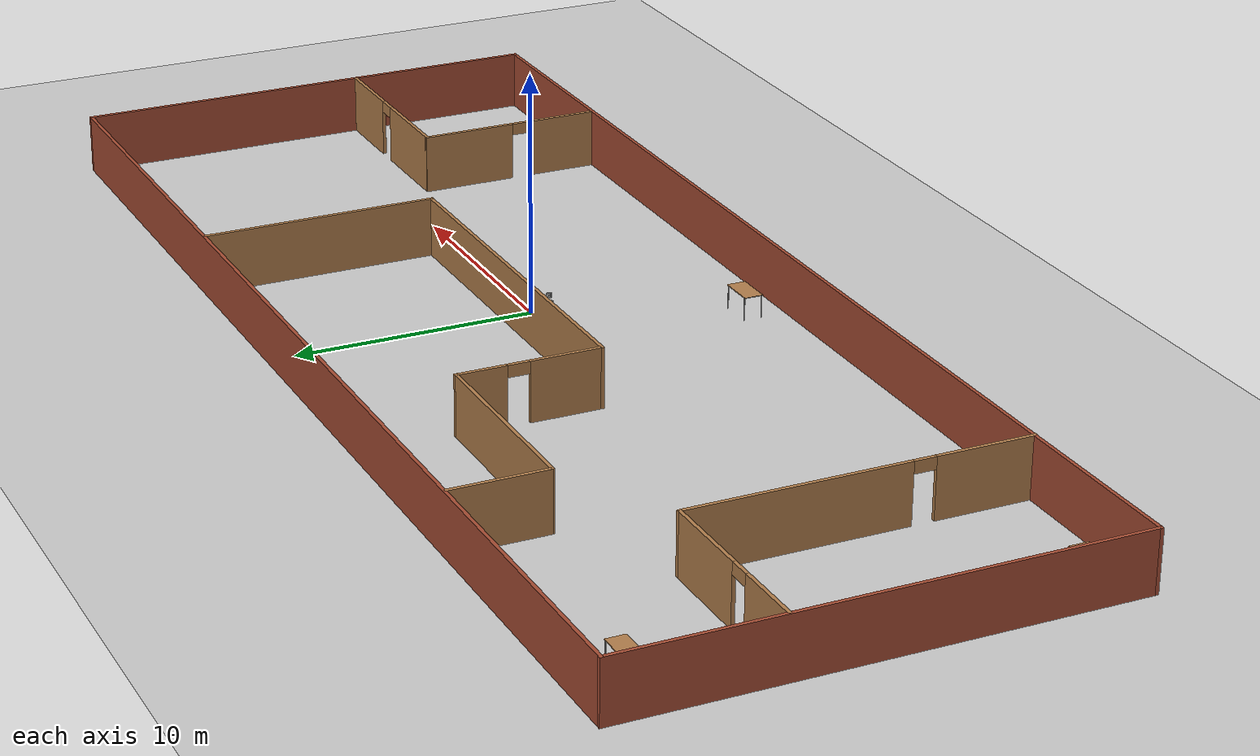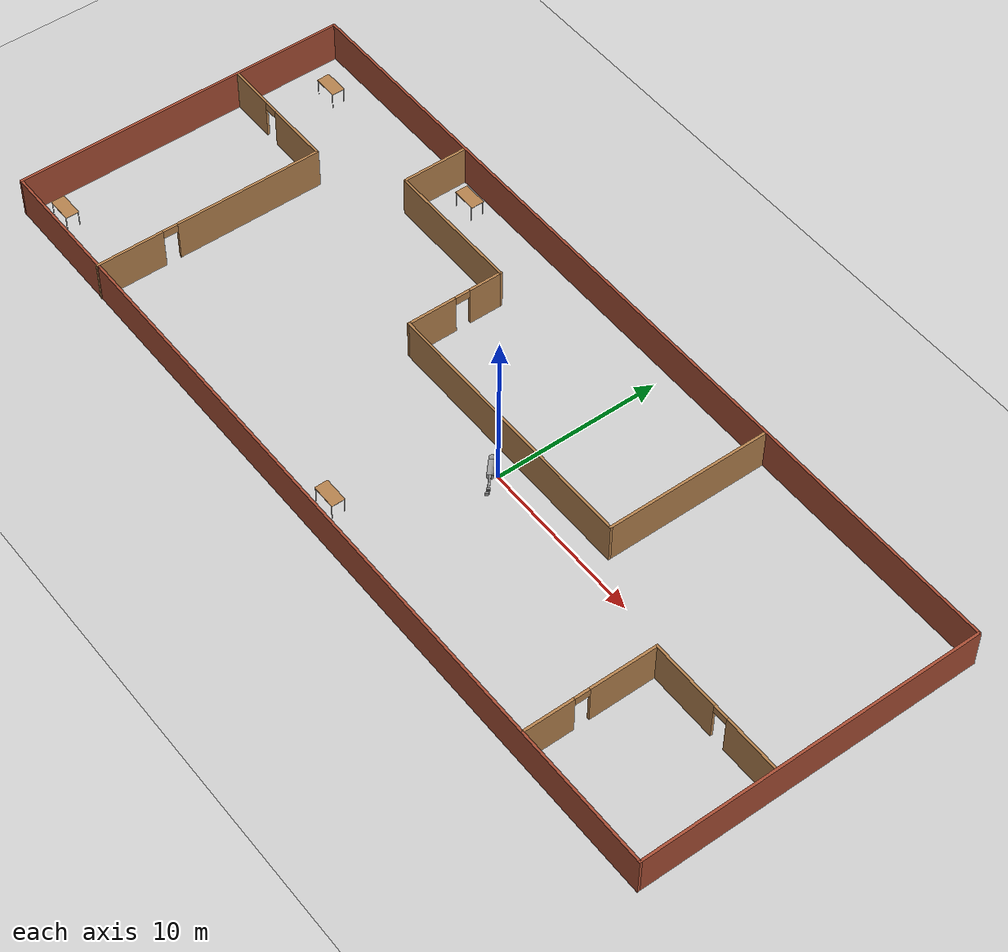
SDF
<sdf version="1.6">
 <world name="default">
  <model name="ground_plane">
   <static>1</static>
   <link name="link">
    <collision name="collision">
     <geometry><plane><normal>0 0 1</normal><size>100 100</size></plane></geometry>
     <surface><friction><ode><mu>100</mu><mu2>50</mu2></ode></friction></surface>
    </collision>
    <visual name="visual">
     <cast_shadows>0</cast_shadows>
     <geometry><plane><normal>0 0 1</normal><size>100 100</size></plane></geometry>
     <material>
      <script><uri>file://media/materials/scripts/gazebo.material</uri><name>Gazebo/Grey</name></script>
     </material>
    </visual>
   </link>
  </model>
  <model name="My_building">
   <pose>-3.695 0.89314 0 0 -0 0</pose>
   <link name="Wall_10">
    <collision name="Wall_10_Collision">
     <geometry><box><size>4 0.15 2.5</size></box></geometry>
     <pose>0 0 1.25 0 -0 0</pose>
    </collision>
    <visual name="Wall_10_Visual">
     <pose>0 0 1.25 0 -0 0</pose>
     <geometry><box><size>4 0.15 2.5</size></box></geometry>
     <material>
      <script><uri>file://media/materials/scripts/gazebo.material</uri><name>Gazebo/Wood</name></script>
      <ambient>1 1 1 1</ambient>
     </material>
     <meta><layer>0</layer></meta>
    </visual>
    <pose>-13.7983 8.19008 0 0 -0 1.5708</pose>
   </link>
   <link name="Wall_13">
    <collision name="Wall_13_Collision">
     <geometry><box><size>10 0.15 2.5</size></box></geometry>
     <pose>0 0 1.25 0 -0 0</pose>
    </collision>
    <visual name="Wall_13_Visual">
     <pose>0 0 1.25 0 -0 0</pose>
     <geometry><box><size>10 0.15 2.5</size></box></geometry>
     <material>
      <script><uri>file://media/materials/scripts/gazebo.material</uri><name>Gazebo/Wood</name></script>
      <ambient>1 1 1 1</ambient>
     </material>
     <meta><layer>0</layer></meta>
    </visual>
    <pose>10.9198 5.26327 0 0 0 -1.5708</pose>
   </link>
   <link name="Wall_14">
    <collision name="Wall_14_Collision">
     <geometry><box><size>16.5 0.15 2.5</size></box></geometry>
     <pose>0 0 1.25 0 -0 0</pose>
    </collision>
    <visual name="Wall_14_Visual">
     <pose>0 0 1.25 0 -0 0</pose>
     <geometry><box><size>16.5 0.15 2.5</size></box></geometry>
     <material>
      <script><uri>file://media/materials/scripts/gazebo.material</uri><name>Gazebo/Wood</name></script>
      <ambient>0.996078 0.47451 0.0196078 1</ambient>
     </material>
     <meta><layer>0</layer></meta>
    </visual>
    <pose>2.74482 0.338271 0 0 -0 3.14159</pose>
   </link>
   <link name="Wall_15">
    <pose>-5.43018 3.26327 0 0 -0 1.5708</pose>
    <visual name="Wall_15_Visual_0">
     <pose>-1.49276 0 1.25 0 -0 0</pose>
     <geometry><box><size>3.01449 0.15 2.5</size></box></geometry>
     <material>
      <script><uri>file://media/materials/scripts/gazebo.material</uri><name>Gazebo/Wood</name></script>
      <ambient>1 1 1 1</ambient>
     </material>
     <meta><layer>0</layer></meta>
    </visual>
    <collision name="Wall_15_Collision_0">
     <geometry><box><size>3.01449 0.15 2.5</size></box></geometry>
     <pose>-1.49276 0 1.25 0 -0 0</pose>
    </collision>
    <visual name="Wall_15_Visual_1">
     <pose>1.95724 0 1.25 0 -0 0</pose>
     <geometry><box><size>2.08551 0.15 2.5</size></box></geometry>
     <material>
      <script><uri>file://media/materials/scripts/gazebo.material</uri><name>Gazebo/Wood</name></script>
      <ambient>1 1 1 1</ambient>
     </material>
     <meta><layer>0</layer></meta>
    </visual>
    <collision name="Wall_15_Collision_1">
     <geometry><box><size>2.08551 0.15 2.5</size></box></geometry>
     <pose>1.95724 0 1.25 0 -0 0</pose>
    </collision>
    <visual name="Wall_15_Visual_2">
     <pose>0.464491 0 2.25 0 -0 0</pose>
     <geometry><box><size>0.9 0.15 0.5</size></box></geometry>
     <material>
      <script><uri>file://media/materials/scripts/gazebo.material</uri><name>Gazebo/Wood</name></script>
      <ambient>1 1 1 1</ambient>
     </material>
     <meta><layer>0</layer></meta>
    </visual>
    <collision name="Wall_15_Collision_2">
     <geometry><box><size>0.9 0.15 0.5</size></box></geometry>
     <pose>0.464491 0 2.25 0 -0 0</pose>
    </collision>
   </link>
   <link name="Wall_16">
    <collision name="Wall_16_Collision">
     <geometry><box><size>8.5 0.15 2.5</size></box></geometry>
     <pose>0 0 1.25 0 -0 0</pose>
    </collision>
    <visual name="Wall_16_Visual">
     <pose>0 0 1.25 0 -0 0</pose>
     <geometry><box><size>8.5 0.15 2.5</size></box></geometry>
     <material>
      <script><uri>file://media/materials/scripts/gazebo.material</uri><name>Gazebo/Wood</name></script>
      <ambient>1 1 1 1</ambient>
     </material>
     <meta><layer>0</layer></meta>
    </visual>
    <pose>-9.60518 6.18827 0 0 -0 3.14159</pose>
   </link>
   <link name="Wall_23">
    <pose>17.6076 -6.18169 0 0 -0 1.5708</pose>
    <visual name="Wall_23_Visual_0">
     <pose>-2.48677 0 1.25 0 -0 0</pose>
     <geometry><box><size>3.02646 0.15 2.5</size></box></geometry>
     <material>
      <script><uri>file://media/materials/scripts/gazebo.material</uri><name>Gazebo/Wood</name></script>
      <ambient>1 1 1 1</ambient>
     </material>
     <meta><layer>0</layer></meta>
    </visual>
    <collision name="Wall_23_Collision_0">
     <geometry><box><size>3.02646 0.15 2.5</size></box></geometry>
     <pose>-2.48677 0 1.25 0 -0 0</pose>
    </collision>
    <visual name="Wall_23_Visual_1">
     <pose>1.96323 0 1.25 0 -0 0</pose>
     <geometry><box><size>4.07354 0.15 2.5</size></box></geometry>
     <material>
      <script><uri>file://media/materials/scripts/gazebo.material</uri><name>Gazebo/Wood</name></script>
      <ambient>1 1 1 1</ambient>
     </material>
     <meta><layer>0</layer></meta>
    </visual>
    <collision name="Wall_23_Collision_1">
     <geometry><box><size>4.07354 0.15 2.5</size></box></geometry>
     <pose>1.96323 0 1.25 0 -0 0</pose>
    </collision>
    <visual name="Wall_23_Visual_2">
     <pose>-0.523537 0 2.25 0 -0 0</pose>
     <geometry><box><size>0.9 0.15 0.5</size></box></geometry>
     <material>
      <script><uri>file://media/materials/scripts/gazebo.material</uri><name>Gazebo/Wood</name></script>
      <ambient>1 1 1 1</ambient>
     </material>
     <meta><layer>0</layer></meta>
    </visual>
    <collision name="Wall_23_Collision_2">
     <geometry><box><size>0.9 0.15 0.5</size></box></geometry>
     <pose>-0.523537 0 2.25 0 -0 0</pose>
    </collision>
   </link>
   <link name="Wall_24">
    <pose>21.7826 -2.25669 0 0 -0 0</pose>
    <visual name="Wall_24_Visual_0">
     <pose>-2.14293 0 1.25 0 -0 0</pose>
     <geometry><box><size>4.21413 0.15 2.5</size></box></geometry>
     <material>
      <script><uri>file://media/materials/scripts/gazebo.material</uri><name>Gazebo/Wood</name></script>
      <ambient>1 1 1 1</ambient>
     </material>
     <meta><layer>0</layer></meta>
    </visual>
    <collision name="Wall_24_Collision_0">
     <geometry><box><size>4.21413 0.15 2.5</size></box></geometry>
     <pose>-2.14293 0 1.25 0 -0 0</pose>
    </collision>
    <visual name="Wall_24_Visual_1">
     <pose>2.55707 0 1.25 0 -0 0</pose>
     <geometry><box><size>3.38587 0.15 2.5</size></box></geometry>
     <material>
      <script><uri>file://media/materials/scripts/gazebo.material</uri><name>Gazebo/Wood</name></script>
      <ambient>1 1 1 1</ambient>
     </material>
     <meta><layer>0</layer></meta>
    </visual>
    <collision name="Wall_24_Collision_1">
     <geometry><box><size>3.38587 0.15 2.5</size></box></geometry>
     <pose>2.55707 0 1.25 0 -0 0</pose>
    </collision>
    <visual name="Wall_24_Visual_2">
     <pose>0.414131 0 2.25 0 -0 0</pose>
     <geometry><box><size>0.9 0.15 0.5</size></box></geometry>
     <material>
      <script><uri>file://media/materials/scripts/gazebo.material</uri><name>Gazebo/Wood</name></script>
      <ambient>1 1 1 1</ambient>
     </material>
     <meta><layer>0</layer></meta>
    </visual>
    <collision name="Wall_24_Collision_2">
     <geometry><box><size>0.9 0.15 0.5</size></box></geometry>
     <pose>0.414131 0 2.25 0 -0 0</pose>
    </collision>
   </link>
   <link name="Wall_26">
    <pose>-22.1969 3.66097 0 0 -0 0</pose>
    <visual name="Wall_26_Visual_0">
     <pose>-2.43672 0 1.25 0 -0 0</pose>
     <geometry><box><size>2.87657 0.15 2.5</size></box></geometry>
     <material>
      <script><uri>file://media/materials/scripts/gazebo.material</uri><name>Gazebo/Wood</name></script>
      <ambient>1 1 1 1</ambient>
     </material>
     <meta><layer>0</layer></meta>
    </visual>
    <collision name="Wall_26_Collision_0">
     <geometry><box><size>2.87657 0.15 2.5</size></box></geometry>
     <pose>-2.43672 0 1.25 0 -0 0</pose>
    </collision>
    <visual name="Wall_26_Visual_1">
     <pose>1.88828 0 1.25 0 -0 0</pose>
     <geometry><box><size>3.97343 0.15 2.5</size></box></geometry>
     <material>
      <script><uri>file://media/materials/scripts/gazebo.material</uri><name>Gazebo/Wood</name></script>
      <ambient>1 1 1 1</ambient>
     </material>
     <meta><layer>0</layer></meta>
    </visual>
    <collision name="Wall_26_Collision_1">
     <geometry><box><size>3.97343 0.15 2.5</size></box></geometry>
     <pose>1.88828 0 1.25 0 -0 0</pose>
    </collision>
    <visual name="Wall_26_Visual_2">
     <pose>-0.548431 0 2.25 0 -0 0</pose>
     <geometry><box><size>0.9 0.15 0.5</size></box></geometry>
     <material>
      <script><uri>file://media/materials/scripts/gazebo.material</uri><name>Gazebo/Wood</name></script>
      <ambient>1 1 1 1</ambient>
     </material>
     <meta><layer>0</layer></meta>
    </visual>
    <collision name="Wall_26_Collision_2">
     <geometry><box><size>0.9 0.15 0.5</size></box></geometry>
     <pose>-0.548431 0 2.25 0 -0 0</pose>
    </collision>
   </link>
   <link name="Wall_27">
    <pose>-18.3969 -3.26403 0 0 0 -1.5708</pose>
    <visual name="Wall_27_Visual_0">
     <pose>-2.48593 0 1.25 0 -0 0</pose>
     <geometry><box><size>9.02815 0.15 2.5</size></box></geometry>
     <material>
      <script><uri>file://media/materials/scripts/gazebo.material</uri><name>Gazebo/Wood</name></script>
      <ambient>0.996078 0.47451 0.0196078 1</ambient>
     </material>
     <meta><layer>0</layer></meta>
    </visual>
    <collision name="Wall_27_Collision_0">
     <geometry><box><size>9.02815 0.15 2.5</size></box></geometry>
     <pose>-2.48593 0 1.25 0 -0 0</pose>
    </collision>
    <visual name="Wall_27_Visual_1">
     <pose>4.96407 0 1.25 0 -0 0</pose>
     <geometry><box><size>4.07185 0.15 2.5</size></box></geometry>
     <material>
      <script><uri>file://media/materials/scripts/gazebo.material</uri><name>Gazebo/Wood</name></script>
      <ambient>0.996078 0.47451 0.0196078 1</ambient>
     </material>
     <meta><layer>0</layer></meta>
    </visual>
    <collision name="Wall_27_Collision_1">
     <geometry><box><size>4.07185 0.15 2.5</size></box></geometry>
     <pose>4.96407 0 1.25 0 -0 0</pose>
    </collision>
    <visual name="Wall_27_Visual_2">
     <pose>2.47815 0 2.25 0 -0 0</pose>
     <geometry><box><size>0.9 0.15 0.5</size></box></geometry>
     <material>
      <script><uri>file://media/materials/scripts/gazebo.material</uri><name>Gazebo/Wood</name></script>
      <ambient>0.996078 0.47451 0.0196078 1</ambient>
     </material>
     <meta><layer>0</layer></meta>
    </visual>
    <collision name="Wall_27_Collision_2">
     <geometry><box><size>0.9 0.15 0.5</size></box></geometry>
     <pose>2.47815 0 2.25 0 -0 0</pose>
    </collision>
   </link>
   <link name="Wall_3">
    <collision name="Wall_3_Collision">
     <geometry><box><size>52.25 0.15 2.5</size></box></geometry>
     <pose>0 0 1.25 0 -0 0</pose>
    </collision>
    <visual name="Wall_3_Visual">
     <pose>0 0 1.25 0 -0 0</pose>
     <geometry><box><size>52.25 0.15 2.5</size></box></geometry>
     <material>
      <script><uri>file://media/materials/scripts/gazebo.material</uri><name>Gazebo/Bricks</name></script>
      <ambient>1 1 1 1</ambient>
     </material>
     <meta><layer>0</layer></meta>
    </visual>
    <pose>-1e-06 10.189 0 0 -0 0</pose>
   </link>
   <link name="Wall_4">
    <collision name="Wall_4_Collision">
     <geometry><box><size>20.5 0.15 2.5</size></box></geometry>
     <pose>0 0 1.25 0 -0 0</pose>
    </collision>
    <visual name="Wall_4_Visual">
     <pose>0 0 1.25 0 -0 0</pose>
     <geometry><box><size>20.5 0.15 2.5</size></box></geometry>
     <material>
      <script><uri>file://media/materials/scripts/gazebo.material</uri><name>Gazebo/Bricks</name></script>
      <ambient>1 1 1 1</ambient>
     </material>
     <meta><layer>0</layer></meta>
    </visual>
    <pose>26.05 0.014033 0 0 0 -1.5708</pose>
   </link>
   <link name="Wall_5">
    <collision name="Wall_5_Collision">
     <geometry><box><size>52.25 0.15 2.5</size></box></geometry>
     <pose>0 0 1.25 0 -0 0</pose>
    </collision>
    <visual name="Wall_5_Visual">
     <pose>0 0 1.25 0 -0 0</pose>
     <geometry><box><size>52.25 0.15 2.5</size></box></geometry>
     <material>
      <script><uri>file://media/materials/scripts/gazebo.material</uri><name>Gazebo/Bricks</name></script>
      <ambient>1 1 1 1</ambient>
     </material>
     <meta><layer>0</layer></meta>
    </visual>
    <pose>-1e-06 -10.161 0 0 -0 3.14159</pose>
   </link>
   <link name="Wall_6">
    <collision name="Wall_6_Collision">
     <geometry><box><size>20.5 0.15 2.5</size></box></geometry>
     <pose>0 0 1.25 0 -0 0</pose>
    </collision>
    <visual name="Wall_6_Visual">
     <pose>0 0 1.25 0 -0 0</pose>
     <geometry><box><size>20.5 0.15 2.5</size></box></geometry>
     <material>
      <script><uri>file://media/materials/scripts/gazebo.material</uri><name>Gazebo/Bricks</name></script>
      <ambient>1 1 1 1</ambient>
     </material>
     <meta><layer>0</layer></meta>
    </visual>
    <pose>-26.05 0.014033 0 0 -0 1.5708</pose>
   </link>
   <static>1</static>
  </model>
  <model name="table">
   <static>1</static>
   <link name="link">
    <collision name="surface">
     <pose>0 0 1 0 -0 0</pose>
     <geometry><box><size>1.5 0.8 0.03</size></box></geometry>
     <surface><friction><ode><mu>0.6</mu><mu2>0.6</mu2></ode></friction></surface>
    </collision>
    <visual name="visual1">
     <pose>0 0 1 0 -0 0</pose>
     <geometry><box><size>1.5 0.8 0.03</size></box></geometry>
     <material>
      <script><uri>file://media/materials/scripts/gazebo.material</uri><name>Gazebo/Wood</name></script>
     </material>
    </visual>
    <collision name="front_left_leg">
     <pose>0.68 0.38 0.5 0 -0 0</pose>
     <geometry><cylinder><radius>0.02</radius><length>1</length></cylinder></geometry>
    </collision>
    <visual name="front_left_leg">
     <pose>0.68 0.38 0.5 0 -0 0</pose>
     <geometry><cylinder><radius>0.02</radius><length>1</length></cylinder></geometry>
     <material>
      <script><uri>file://media/materials/scripts/gazebo.material</uri><name>Gazebo/Grey</name></script>
     </material>
    </visual>
    <collision name="front_right_leg">
     <pose>0.68 -0.38 0.5 0 -0 0</pose>
     <geometry><cylinder><radius>0.02</radius><length>1</length></cylinder></geometry>
    </collision>
    <visual name="front_right_leg">
     <pose>0.68 -0.38 0.5 0 -0 0</pose>
     <geometry><cylinder><radius>0.02</radius><length>1</length></cylinder></geometry>
     <material>
      <script><uri>file://media/materials/scripts/gazebo.material</uri><name>Gazebo/Grey</name></script>
     </material>
    </visual>
    <collision name="back_right_leg">
     <pose>-0.68 -0.38 0.5 0 -0 0</pose>
     <geometry><cylinder><radius>0.02</radius><length>1</length></cylinder></geometry>
    </collision>
    <visual name="back_right_leg">
     <pose>-0.68 -0.38 0.5 0 -0 0</pose>
     <geometry><cylinder><radius>0.02</radius><length>1</length></cylinder></geometry>
     <material>
      <script><uri>file://media/materials/scripts/gazebo.material</uri><name>Gazebo/Grey</name></script>
     </material>
    </visual>
    <collision name="back_left_leg">
     <pose>-0.68 0.38 0.5 0 -0 0</pose>
     <geometry><cylinder><radius>0.02</radius><length>1</length></cylinder></geometry>
    </collision>
    <visual name="back_left_leg">
     <pose>-0.68 0.38 0.5 0 -0 0</pose>
     <geometry><cylinder><radius>0.02</radius><length>1</length></cylinder></geometry>
     <material>
      <script><uri>file://media/materials/scripts/gazebo.material</uri><name>Gazebo/Grey</name></script>
     </material>
    </visual>
   </link>
   <pose>-3.54039 -7.70707 0 0 -0 0</pose>
  </model>
  <model name="table_1">
   <static>1</static>
   <link name="link">
    <collision name="surface">
     <pose>0 0 1 0 -0 0</pose>
     <geometry><box><size>1.5 0.8 0.03</size></box></geometry>
     <surface><friction><ode><mu>0.6</mu><mu2>0.6</mu2></ode></friction></surface>
    </collision>
    <visual name="visual1">
     <pose>0 0 1 0 -0 0</pose>
     <geometry><box><size>1.5 0.8 0.03</size></box></geometry>
     <material>
      <script><uri>file://media/materials/scripts/gazebo.material</uri><name>Gazebo/Wood</name></script>
     </material>
    </visual>
    <collision name="front_left_leg">
     <pose>0.68 0.38 0.5 0 -0 0</pose>
     <geometry><cylinder><radius>0.02</radius><length>1</length></cylinder></geometry>
    </collision>
    <visual name="front_left_leg">
     <pose>0.68 0.38 0.5 0 -0 0</pose>
     <geometry><cylinder><radius>0.02</radius><length>1</length></cylinder></geometry>
     <material>
      <script><uri>file://media/materials/scripts/gazebo.material</uri><name>Gazebo/Grey</name></script>
     </material>
    </visual>
    <collision name="front_right_leg">
     <pose>0.68 -0.38 0.5 0 -0 0</pose>
     <geometry><cylinder><radius>0.02</radius><length>1</length></cylinder></geometry>
    </collision>
    <visual name="front_right_leg">
     <pose>0.68 -0.38 0.5 0 -0 0</pose>
     <geometry><cylinder><radius>0.02</radius><length>1</length></cylinder></geometry>
     <material>
      <script><uri>file://media/materials/scripts/gazebo.material</uri><name>Gazebo/Grey</name></script>
     </material>
    </visual>
    <collision name="back_right_leg">
     <pose>-0.68 -0.38 0.5 0 -0 0</pose>
     <geometry><cylinder><radius>0.02</radius><length>1</length></cylinder></geometry>
    </collision>
    <visual name="back_right_leg">
     <pose>-0.68 -0.38 0.5 0 -0 0</pose>
     <geometry><cylinder><radius>0.02</radius><length>1</length></cylinder></geometry>
     <material>
      <script><uri>file://media/materials/scripts/gazebo.material</uri><name>Gazebo/Grey</name></script>
     </material>
    </visual>
    <collision name="back_left_leg">
     <pose>-0.68 0.38 0.5 0 -0 0</pose>
     <geometry><cylinder><radius>0.02</radius><length>1</length></cylinder></geometry>
    </collision>
    <visual name="back_left_leg">
     <pose>-0.68 0.38 0.5 0 -0 0</pose>
     <geometry><cylinder><radius>0.02</radius><length>1</length></cylinder></geometry>
     <material>
      <script><uri>file://media/materials/scripts/gazebo.material</uri><name>Gazebo/Grey</name></script>
     </material>
    </visual>
   </link>
   <pose>-15.6009 9.94625 0 0 -0 0</pose>
  </model>
  <model name="table_3">
   <static>1</static>
   <link name="link">
    <collision name="surface">
     <pose>0 0 1 0 -0 0</pose>
     <geometry><box><size>1.5 0.8 0.03</size></box></geometry>
     <surface><friction><ode><mu>0.6</mu><mu2>0.6</mu2></ode></friction></surface>
    </collision>
    <visual name="visual1">
     <pose>0 0 1 0 -0 0</pose>
     <geometry><box><size>1.5 0.8 0.03</size></box></geometry>
     <material>
      <script><uri>file://media/materials/scripts/gazebo.material</uri><name>Gazebo/Wood</name></script>
     </material>
    </visual>
    <collision name="front_left_leg">
     <pose>0.68 0.38 0.5 0 -0 0</pose>
     <geometry><cylinder><radius>0.02</radius><length>1</length></cylinder></geometry>
    </collision>
    <visual name="front_left_leg">
     <pose>0.68 0.38 0.5 0 -0 0</pose>
     <geometry><cylinder><radius>0.02</radius><length>1</length></cylinder></geometry>
     <material>
      <script><uri>file://media/materials/scripts/gazebo.material</uri><name>Gazebo/Grey</name></script>
     </material>
    </visual>
    <collision name="front_right_leg">
     <pose>0.68 -0.38 0.5 0 -0 0</pose>
     <geometry><cylinder><radius>0.02</radius><length>1</length></cylinder></geometry>
    </collision>
    <visual name="front_right_leg">
     <pose>0.68 -0.38 0.5 0 -0 0</pose>
     <geometry><cylinder><radius>0.02</radius><length>1</length></cylinder></geometry>
     <material>
      <script><uri>file://media/materials/scripts/gazebo.material</uri><name>Gazebo/Grey</name></script>
     </material>
    </visual>
    <collision name="back_right_leg">
     <pose>-0.68 -0.38 0.5 0 -0 0</pose>
     <geometry><cylinder><radius>0.02</radius><length>1</length></cylinder></geometry>
    </collision>
    <visual name="back_right_leg">
     <pose>-0.68 -0.38 0.5 0 -0 0</pose>
     <geometry><cylinder><radius>0.02</radius><length>1</length></cylinder></geometry>
     <material>
      <script><uri>file://media/materials/scripts/gazebo.material</uri><name>Gazebo/Grey</name></script>
     </material>
    </visual>
    <collision name="back_left_leg">
     <pose>-0.68 0.38 0.5 0 -0 0</pose>
     <geometry><cylinder><radius>0.02</radius><length>1</length></cylinder></geometry>
    </collision>
    <visual name="back_left_leg">
     <pose>-0.68 0.38 0.5 0 -0 0</pose>
     <geometry><cylinder><radius>0.02</radius><length>1</length></cylinder></geometry>
     <material>
      <script><uri>file://media/materials/scripts/gazebo.material</uri><name>Gazebo/Grey</name></script>
     </material>
    </visual>
   </link>
   <pose>-27.2072 9.00097 0 0 -0 0</pose>
  </model>
  <model name="table_4">
   <static>1</static>
   <link name="link">
    <collision name="surface">
     <pose>0 0 1 0 -0 0</pose>
     <geometry><box><size>1.5 0.8 0.03</size></box></geometry>
     <surface><friction><ode><mu>0.6</mu><mu2>0.6</mu2></ode></friction></surface>
    </collision>
    <visual name="visual1">
     <pose>0 0 1 0 -0 0</pose>
     <geometry><box><size>1.5 0.8 0.03</size></box></geometry>
     <material>
      <script><uri>file://media/materials/scripts/gazebo.material</uri><name>Gazebo/Wood</name></script>
     </material>
    </visual>
    <collision name="front_left_leg">
     <pose>0.68 0.38 0.5 0 -0 0</pose>
     <geometry><cylinder><radius>0.02</radius><length>1</length></cylinder></geometry>
    </collision>
    <visual name="front_left_leg">
     <pose>0.68 0.38 0.5 0 -0 0</pose>
     <geometry><cylinder><radius>0.02</radius><length>1</length></cylinder></geometry>
     <material>
      <script><uri>file://media/materials/scripts/gazebo.material</uri><name>Gazebo/Grey</name></script>
     </material>
    </visual>
    <collision name="front_right_leg">
     <pose>0.68 -0.38 0.5 0 -0 0</pose>
     <geometry><cylinder><radius>0.02</radius><length>1</length></cylinder></geometry>
    </collision>
    <visual name="front_right_leg">
     <pose>0.68 -0.38 0.5 0 -0 0</pose>
     <geometry><cylinder><radius>0.02</radius><length>1</length></cylinder></geometry>
     <material>
      <script><uri>file://media/materials/scripts/gazebo.material</uri><name>Gazebo/Grey</name></script>
     </material>
    </visual>
    <collision name="back_right_leg">
     <pose>-0.68 -0.38 0.5 0 -0 0</pose>
     <geometry><cylinder><radius>0.02</radius><length>1</length></cylinder></geometry>
    </collision>
    <visual name="back_right_leg">
     <pose>-0.68 -0.38 0.5 0 -0 0</pose>
     <geometry><cylinder><radius>0.02</radius><length>1</length></cylinder></geometry>
     <material>
      <script><uri>file://media/materials/scripts/gazebo.material</uri><name>Gazebo/Grey</name></script>
     </material>
    </visual>
    <collision name="back_left_leg">
     <pose>-0.68 0.38 0.5 0 -0 0</pose>
     <geometry><cylinder><radius>0.02</radius><length>1</length></cylinder></geometry>
    </collision>
    <visual name="back_left_leg">
     <pose>-0.68 0.38 0.5 0 -0 0</pose>
     <geometry><cylinder><radius>0.02</radius><length>1</length></cylinder></geometry>
     <material>
      <script><uri>file://media/materials/scripts/gazebo.material</uri><name>Gazebo/Grey</name></script>
     </material>
    </visual>
   </link>
   <pose>-28.0015 -7.81856 0 0 -0 0</pose>
  </model>
  <model name="humanoid_1">
   <link name="link_0">
    <pose>0.0025 0.019375 0.775 0 -0 0</pose>
    <inertial>
     <mass>1</mass>
     <inertia><ixx>0.145833</ixx><ixy>0</ixy><ixz>0</ixz><iyy>0.145833</iyy><iyz>0</iyz><izz>0.125</izz></inertia>
    </inertial>
    <visual name="visual">
     <geometry><cylinder><radius>0.2</radius><length>1</length></cylinder></geometry>
     <material>
      <lighting>1</lighting>
      <script><uri>file://media/materials/scripts/gazebo.material</uri><name>Gazebo/Grey</name></script>
      <shader type="pixel"><normal_map>__default__</normal_map></shader>
      <ambient>0.3 0.3 0.3 1</ambient>
      <diffuse>0.7 0.7 0.7 1</diffuse>
      <specular>0.01 0.01 0.01 1</specular>
      <emissive>0 0 0 1</emissive>
     </material>
    </visual>
    <collision name="collision">
     <geometry><cylinder><radius>0.2</radius><length>1</length></cylinder></geometry>
     <surface>
      <friction>
       <ode><mu>1</mu><mu2>1</mu2><fdir1>0 0 0</fdir1><slip1>0</slip1><slip2>0</slip2></ode>
       <torsional>
        <coefficient>1</coefficient>
        <patch_radius>0</patch_radius>
        <surface_radius>0</surface_radius>
        <use_patch_radius>1</use_patch_radius>
        <ode><slip>0</slip></ode>
       </torsional>
      </friction>
      <bounce><restitution_coefficient>0</restitution_coefficient><threshold>1e+06</threshold></bounce>
      <contact>
       <collide_without_contact>0</collide_without_contact>
       <collide_without_contact_bitmask>1</collide_without_contact_bitmask>
       <collide_bitmask>1</collide_bitmask>
       <ode>
        <soft_cfm>0</soft_cfm>
        <soft_erp>0.2</soft_erp>
        <kp>1e+13</kp>
        <kd>1</kd>
        <max_vel>0.01</max_vel>
        <min_depth>0</min_depth>
       </ode>
       <bullet>
        <split_impulse>1</split_impulse>
        <split_impulse_penetration_threshold>-0.01</split_impulse_penetration_threshold>
        <soft_cfm>0</soft_cfm>
        <soft_erp>0.2</soft_erp>
        <kp>1e+13</kp>
        <kd>1</kd>
       </bullet>
      </contact>
     </surface>
    </collision>
   </link>
   <link name="link_2">
    <pose>0.0025 0.019375 1.475 0 -0 0</pose>
    <inertial>
     <mass>1</mass>
     <inertia><ixx>0.1</ixx><ixy>0</ixy><ixz>0</ixz><iyy>0.1</iyy><iyz>0</iyz><izz>0.1</izz></inertia>
    </inertial>
    <visual name="visual">
     <geometry><sphere><radius>0.2</radius></sphere></geometry>
     <material>
      <lighting>1</lighting>
      <script><uri>file://media/materials/scripts/gazebo.material</uri><name>Gazebo/Grey</name></script>
      <shader type="pixel"><normal_map>__default__</normal_map></shader>
      <ambient>0.3 0.3 0.3 1</ambient>
      <diffuse>0.7 0.7 0.7 1</diffuse>
      <specular>0.01 0.01 0.01 1</specular>
      <emissive>0 0 0 1</emissive>
     </material>
    </visual>
    <collision name="collision">
     <geometry><sphere><radius>0.2</radius></sphere></geometry>
     <surface>
      <friction>
       <ode><mu>1</mu><mu2>1</mu2><fdir1>0 0 0</fdir1><slip1>0</slip1><slip2>0</slip2></ode>
       <torsional>
        <coefficient>1</coefficient>
        <patch_radius>0</patch_radius>
        <surface_radius>0</surface_radius>
        <use_patch_radius>1</use_patch_radius>
        <ode><slip>0</slip></ode>
       </torsional>
      </friction>
      <bounce><restitution_coefficient>0</restitution_coefficient><threshold>1e+06</threshold></bounce>
      <contact>
       <collide_without_contact>0</collide_without_contact>
       <collide_without_contact_bitmask>1</collide_without_contact_bitmask>
       <collide_bitmask>1</collide_bitmask>
       <ode>
        <soft_cfm>0</soft_cfm>
        <soft_erp>0.2</soft_erp>
        <kp>1e+13</kp>
        <kd>1</kd>
        <max_vel>0.01</max_vel>
        <min_depth>0</min_depth>
       </ode>
       <bullet>
        <split_impulse>1</split_impulse>
        <split_impulse_penetration_threshold>-0.01</split_impulse_penetration_threshold>
        <soft_cfm>0</soft_cfm>
        <soft_erp>0.2</soft_erp>
        <kp>1e+13</kp>
        <kd>1</kd>
       </bullet>
      </contact>
     </surface>
    </collision>
   </link>
   <link name="link_4">
    <pose>-0.1475 -0.025625 0.025 0 -0 0</pose>
    <inertial>
     <mass>1</mass>
     <inertia>
      <ixx>0.166667</ixx>
      <ixy>0</ixy>
      <ixz>0</ixz>
      <iyy>0.166667</iyy>
      <iyz>0</iyz>
      <izz>0.166667</izz>
     </inertia>
    </inertial>
    <visual name="visual">
     <geometry><box><size>0.1 0.1 0.5</size></box></geometry>
     <material>
      <lighting>1</lighting>
      <script><uri>file://media/materials/scripts/gazebo.material</uri><name>Gazebo/Grey</name></script>
      <shader type="pixel"><normal_map>__default__</normal_map></shader>
      <ambient>0.3 0.3 0.3 1</ambient>
      <diffuse>0.7 0.7 0.7 1</diffuse>
      <specular>0.01 0.01 0.01 1</specular>
      <emissive>0 0 0 1</emissive>
     </material>
    </visual>
    <collision name="collision">
     <geometry><box><size>0.1 0.1 0.5</size></box></geometry>
     <surface>
      <friction>
       <ode><mu>1</mu><mu2>1</mu2><fdir1>0 0 0</fdir1><slip1>0</slip1><slip2>0</slip2></ode>
       <torsional>
        <coefficient>1</coefficient>
        <patch_radius>0</patch_radius>
        <surface_radius>0</surface_radius>
        <use_patch_radius>1</use_patch_radius>
        <ode><slip>0</slip></ode>
       </torsional>
      </friction>
      <bounce><restitution_coefficient>0</restitution_coefficient><threshold>1e+06</threshold></bounce>
      <contact>
       <collide_without_contact>0</collide_without_contact>
       <collide_without_contact_bitmask>1</collide_without_contact_bitmask>
       <collide_bitmask>1</collide_bitmask>
       <ode>
        <soft_cfm>0</soft_cfm>
        <soft_erp>0.2</soft_erp>
        <kp>1e+13</kp>
        <kd>1</kd>
        <max_vel>0.01</max_vel>
        <min_depth>0</min_depth>
       </ode>
       <bullet>
        <split_impulse>1</split_impulse>
        <split_impulse_penetration_threshold>-0.01</split_impulse_penetration_threshold>
        <soft_cfm>0</soft_cfm>
        <soft_erp>0.2</soft_erp>
        <kp>1e+13</kp>
        <kd>1</kd>
       </bullet>
      </contact>
     </surface>
    </collision>
   </link>
   <link name="link_4_clone">
    <pose>-0.1475 -0.025625 -0.475 0 -0 0</pose>
    <inertial>
     <mass>1</mass>
     <inertia>
      <ixx>0.166667</ixx>
      <ixy>0</ixy>
      <ixz>0</ixz>
      <iyy>0.166667</iyy>
      <iyz>0</iyz>
      <izz>0.166667</izz>
     </inertia>
    </inertial>
    <visual name="visual">
     <geometry><box><size>0.1 0.1 0.5</size></box></geometry>
     <material>
      <lighting>1</lighting>
      <script><uri>file://media/materials/scripts/gazebo.material</uri><name>Gazebo/Grey</name></script>
      <shader type="pixel"><normal_map>__default__</normal_map></shader>
      <ambient>0.3 0.3 0.3 1</ambient>
      <diffuse>0.7 0.7 0.7 1</diffuse>
      <specular>0.01 0.01 0.01 1</specular>
      <emissive>0 0 0 1</emissive>
     </material>
    </visual>
    <collision name="collision">
     <geometry><box><size>0.1 0.1 0.5</size></box></geometry>
     <surface>
      <friction>
       <ode><mu>1</mu><mu2>1</mu2><fdir1>0 0 0</fdir1><slip1>0</slip1><slip2>0</slip2></ode>
       <torsional>
        <coefficient>1</coefficient>
        <patch_radius>0</patch_radius>
        <surface_radius>0</surface_radius>
        <use_patch_radius>1</use_patch_radius>
        <ode><slip>0</slip></ode>
       </torsional>
      </friction>
      <bounce><restitution_coefficient>0</restitution_coefficient><threshold>1e+06</threshold></bounce>
      <contact>
       <collide_without_contact>0</collide_without_contact>
       <collide_without_contact_bitmask>1</collide_without_contact_bitmask>
       <collide_bitmask>1</collide_bitmask>
       <ode>
        <soft_cfm>0</soft_cfm>
        <soft_erp>0.2</soft_erp>
        <kp>1e+13</kp>
        <kd>1</kd>
        <max_vel>0.01</max_vel>
        <min_depth>0</min_depth>
       </ode>
       <bullet>
        <split_impulse>1</split_impulse>
        <split_impulse_penetration_threshold>-0.01</split_impulse_penetration_threshold>
        <soft_cfm>0</soft_cfm>
        <soft_erp>0.2</soft_erp>
        <kp>1e+13</kp>
        <kd>1</kd>
       </bullet>
      </contact>
     </surface>
    </collision>
   </link>
   <link name="link_4_clone_0">
    <pose>0.1525 0.019375 0.025 0 -0 0</pose>
    <inertial>
     <mass>1</mass>
     <inertia>
      <ixx>0.166667</ixx>
      <ixy>0</ixy>
      <ixz>0</ixz>
      <iyy>0.166667</iyy>
      <iyz>0</iyz>
      <izz>0.166667</izz>
     </inertia>
    </inertial>
    <visual name="visual">
     <geometry><box><size>0.1 0.1 0.5</size></box></geometry>
     <material>
      <lighting>1</lighting>
      <script><uri>file://media/materials/scripts/gazebo.material</uri><name>Gazebo/Grey</name></script>
      <shader type="pixel"><normal_map>__default__</normal_map></shader>
      <ambient>0.3 0.3 0.3 1</ambient>
      <diffuse>0.7 0.7 0.7 1</diffuse>
      <specular>0.01 0.01 0.01 1</specular>
      <emissive>0 0 0 1</emissive>
     </material>
    </visual>
    <collision name="collision">
     <geometry><box><size>0.1 0.1 0.5</size></box></geometry>
     <surface>
      <friction>
       <ode><mu>1</mu><mu2>1</mu2><fdir1>0 0 0</fdir1><slip1>0</slip1><slip2>0</slip2></ode>
       <torsional>
        <coefficient>1</coefficient>
        <patch_radius>0</patch_radius>
        <surface_radius>0</surface_radius>
        <use_patch_radius>1</use_patch_radius>
        <ode><slip>0</slip></ode>
       </torsional>
      </friction>
      <bounce><restitution_coefficient>0</restitution_coefficient><threshold>1e+06</threshold></bounce>
      <contact>
       <collide_without_contact>0</collide_without_contact>
       <collide_without_contact_bitmask>1</collide_without_contact_bitmask>
       <collide_bitmask>1</collide_bitmask>
       <ode>
        <soft_cfm>0</soft_cfm>
        <soft_erp>0.2</soft_erp>
        <kp>1e+13</kp>
        <kd>1</kd>
        <max_vel>0.01</max_vel>
        <min_depth>0</min_depth>
       </ode>
       <bullet>
        <split_impulse>1</split_impulse>
        <split_impulse_penetration_threshold>-0.01</split_impulse_penetration_threshold>
        <soft_cfm>0</soft_cfm>
        <soft_erp>0.2</soft_erp>
        <kp>1e+13</kp>
        <kd>1</kd>
       </bullet>
      </contact>
     </surface>
    </collision>
   </link>
   <link name="link_4_clone_1">
    <pose>0.1525 0.019375 -0.475 0 -0 0</pose>
    <inertial>
     <mass>1</mass>
     <inertia>
      <ixx>0.166667</ixx>
      <ixy>0</ixy>
      <ixz>0</ixz>
      <iyy>0.166667</iyy>
      <iyz>0</iyz>
      <izz>0.166667</izz>
     </inertia>
    </inertial>
    <visual name="visual">
     <geometry><box><size>0.1 0.1 0.5</size></box></geometry>
     <material>
      <lighting>1</lighting>
      <script><uri>file://media/materials/scripts/gazebo.material</uri><name>Gazebo/Grey</name></script>
      <shader type="pixel"><normal_map>__default__</normal_map></shader>
      <ambient>0.3 0.3 0.3 1</ambient>
      <diffuse>0.7 0.7 0.7 1</diffuse>
      <specular>0.01 0.01 0.01 1</specular>
      <emissive>0 0 0 1</emissive>
     </material>
    </visual>
    <collision name="collision">
     <geometry><box><size>0.1 0.1 0.5</size></box></geometry>
     <surface>
      <friction>
       <ode><mu>1</mu><mu2>1</mu2><fdir1>0 0 0</fdir1><slip1>0</slip1><slip2>0</slip2></ode>
       <torsional>
        <coefficient>1</coefficient>
        <patch_radius>0</patch_radius>
        <surface_radius>0</surface_radius>
        <use_patch_radius>1</use_patch_radius>
        <ode><slip>0</slip></ode>
       </torsional>
      </friction>
      <bounce><restitution_coefficient>0</restitution_coefficient><threshold>1e+06</threshold></bounce>
      <contact>
       <collide_without_contact>0</collide_without_contact>
       <collide_without_contact_bitmask>1</collide_without_contact_bitmask>
       <collide_bitmask>1</collide_bitmask>
       <ode>
        <soft_cfm>0</soft_cfm>
        <soft_erp>0.2</soft_erp>
        <kp>1e+13</kp>
        <kd>1</kd>
        <max_vel>0.01</max_vel>
        <min_depth>0</min_depth>
       </ode>
       <bullet>
        <split_impulse>1</split_impulse>
        <split_impulse_penetration_threshold>-0.01</split_impulse_penetration_threshold>
        <soft_cfm>0</soft_cfm>
        <soft_erp>0.2</soft_erp>
        <kp>1e+13</kp>
        <kd>1</kd>
       </bullet>
      </contact>
     </surface>
    </collision>
   </link>
   <link name="link_5">
    <pose>-0.1675 -0.045625 -0.675 0 -0 0</pose>
    <inertial>
     <mass>1</mass>
     <inertia>
      <ixx>0.166667</ixx>
      <ixy>0</ixy>
      <ixz>0</ixz>
      <iyy>0.166667</iyy>
      <iyz>0</iyz>
      <izz>0.166667</izz>
     </inertia>
    </inertial>
    <visual name="visual">
     <geometry><box><size>0.2 0.2 0.1</size></box></geometry>
     <material>
      <lighting>1</lighting>
      <script><uri>file://media/materials/scripts/gazebo.material</uri><name>Gazebo/Grey</name></script>
      <shader type="pixel"><normal_map>__default__</normal_map></shader>
      <ambient>0.3 0.3 0.3 1</ambient>
      <diffuse>0.7 0.7 0.7 1</diffuse>
      <specular>0.01 0.01 0.01 1</specular>
      <emissive>0 0 0 1</emissive>
     </material>
    </visual>
    <collision name="collision">
     <geometry><box><size>0.2 0.2 0.1</size></box></geometry>
     <surface>
      <friction>
       <ode><mu>1</mu><mu2>1</mu2><fdir1>0 0 0</fdir1><slip1>0</slip1><slip2>0</slip2></ode>
       <torsional>
        <coefficient>1</coefficient>
        <patch_radius>0</patch_radius>
        <surface_radius>0</surface_radius>
        <use_patch_radius>1</use_patch_radius>
        <ode><slip>0</slip></ode>
       </torsional>
      </friction>
      <bounce><restitution_coefficient>0</restitution_coefficient><threshold>1e+06</threshold></bounce>
      <contact>
       <collide_without_contact>0</collide_without_contact>
       <collide_without_contact_bitmask>1</collide_without_contact_bitmask>
       <collide_bitmask>1</collide_bitmask>
       <ode>
        <soft_cfm>0</soft_cfm>
        <soft_erp>0.2</soft_erp>
        <kp>1e+13</kp>
        <kd>1</kd>
        <max_vel>0.01</max_vel>
        <min_depth>0</min_depth>
       </ode>
       <bullet>
        <split_impulse>1</split_impulse>
        <split_impulse_penetration_threshold>-0.01</split_impulse_penetration_threshold>
        <soft_cfm>0</soft_cfm>
        <soft_erp>0.2</soft_erp>
        <kp>1e+13</kp>
        <kd>1</kd>
       </bullet>
      </contact>
     </surface>
    </collision>
   </link>
   <link name="link_5_clone">
    <pose>0.1525 0.019375 -0.675 0 -0 0</pose>
    <inertial>
     <mass>1</mass>
     <inertia>
      <ixx>0.166667</ixx>
      <ixy>0</ixy>
      <ixz>0</ixz>
      <iyy>0.166667</iyy>
      <iyz>0</iyz>
      <izz>0.166667</izz>
     </inertia>
    </inertial>
    <visual name="visual">
     <geometry><box><size>0.2 0.2 0.1</size></box></geometry>
     <material>
      <lighting>1</lighting>
      <script><uri>file://media/materials/scripts/gazebo.material</uri><name>Gazebo/Grey</name></script>
      <shader type="pixel"><normal_map>__default__</normal_map></shader>
      <ambient>0.3 0.3 0.3 1</ambient>
      <diffuse>0.7 0.7 0.7 1</diffuse>
      <specular>0.01 0.01 0.01 1</specular>
      <emissive>0 0 0 1</emissive>
     </material>
    </visual>
    <collision name="collision">
     <geometry><box><size>0.2 0.2 0.1</size></box></geometry>
     <surface>
      <friction>
       <ode><mu>1</mu><mu2>1</mu2><fdir1>0 0 0</fdir1><slip1>0</slip1><slip2>0</slip2></ode>
       <torsional>
        <coefficient>1</coefficient>
        <patch_radius>0</patch_radius>
        <surface_radius>0</surface_radius>
        <use_patch_radius>1</use_patch_radius>
        <ode><slip>0</slip></ode>
       </torsional>
      </friction>
      <bounce><restitution_coefficient>0</restitution_coefficient><threshold>1e+06</threshold></bounce>
      <contact>
       <collide_without_contact>0</collide_without_contact>
       <collide_without_contact_bitmask>1</collide_without_contact_bitmask>
       <collide_bitmask>1</collide_bitmask>
       <ode>
        <soft_cfm>0</soft_cfm>
        <soft_erp>0.2</soft_erp>
        <kp>1e+13</kp>
        <kd>1</kd>
        <max_vel>0.01</max_vel>
        <min_depth>0</min_depth>
       </ode>
       <bullet>
        <split_impulse>1</split_impulse>
        <split_impulse_penetration_threshold>-0.01</split_impulse_penetration_threshold>
        <soft_cfm>0</soft_cfm>
        <soft_erp>0.2</soft_erp>
        <kp>1e+13</kp>
        <kd>1</kd>
       </bullet>
      </contact>
     </surface>
    </collision>
   </link>
   <joint name="link_0_JOINT_0" type="fixed">
    <parent>link_0</parent>
    <child>link_2</child>
    <physics>
     <ode><limit><cfm>0</cfm><erp>0.2</erp></limit><suspension><cfm>0</cfm><erp>0.2</erp></suspension></ode>
    </physics>
   </joint>
   <joint name="link_0_JOINT_1" type="revolute2">
    <parent>link_0</parent>
    <child>link_4</child>
    <axis>
     <xyz>1 0 0</xyz>
     <use_parent_model_frame>0</use_parent_model_frame>
     <limit>
      <lower>-1.79769e+308</lower>
      <upper>1.79769e+308</upper>
      <effort>-1</effort>
      <velocity>-1</velocity>
     </limit>
     <dynamics>
      <spring_reference>0</spring_reference>
      <spring_stiffness>0</spring_stiffness>
      <damping>0</damping>
     </dynamics>
    </axis>
    <axis2>
     <xyz>0 1 0</xyz>
     <use_parent_model_frame>0</use_parent_model_frame>
     <dynamics>
      <spring_reference>0</spring_reference>
      <spring_stiffness>0</spring_stiffness>
      <damping>0</damping>
     </dynamics>
     <limit>
      <lower>-1.79769e+308</lower>
      <upper>1.79769e+308</upper>
      <effort>-1</effort>
      <velocity>-1</velocity>
     </limit>
    </axis2>
    <physics>
     <ode><limit><cfm>0</cfm><erp>0.2</erp></limit><suspension><cfm>0</cfm><erp>0.2</erp></suspension></ode>
    </physics>
   </joint>
   <joint name="link_0_JOINT_3" type="revolute2">
    <parent>link_0</parent>
    <child>link_4_clone_0</child>
    <axis>
     <xyz>1 0 0</xyz>
     <use_parent_model_frame>0</use_parent_model_frame>
     <limit>
      <lower>-1.79769e+308</lower>
      <upper>1.79769e+308</upper>
      <effort>-1</effort>
      <velocity>-1</velocity>
     </limit>
     <dynamics>
      <spring_reference>0</spring_reference>
      <spring_stiffness>0</spring_stiffness>
      <damping>0</damping>
     </dynamics>
    </axis>
    <axis2>
     <xyz>0 1 0</xyz>
     <use_parent_model_frame>0</use_parent_model_frame>
     <dynamics>
      <spring_reference>0</spring_reference>
      <spring_stiffness>0</spring_stiffness>
      <damping>0</damping>
     </dynamics>
     <limit>
      <lower>-1.79769e+308</lower>
      <upper>1.79769e+308</upper>
      <effort>-1</effort>
      <velocity>-1</velocity>
     </limit>
    </axis2>
    <physics>
     <ode><limit><cfm>0</cfm><erp>0.2</erp></limit><suspension><cfm>0</cfm><erp>0.2</erp></suspension></ode>
    </physics>
   </joint>
   <joint name="link_4_JOINT_2" type="revolute">
    <parent>link_4</parent>
    <child>link_4_clone</child>
    <axis>
     <xyz>0 1 0</xyz>
     <use_parent_model_frame>0</use_parent_model_frame>
     <limit>
      <lower>-1.79769e+308</lower>
      <upper>1.79769e+308</upper>
      <effort>-1</effort>
      <velocity>-1</velocity>
     </limit>
     <dynamics>
      <spring_reference>0</spring_reference>
      <spring_stiffness>0</spring_stiffness>
      <damping>0</damping>
     </dynamics>
    </axis>
    <physics>
     <ode><limit><cfm>0</cfm><erp>0.2</erp></limit><suspension><cfm>0</cfm><erp>0.2</erp></suspension></ode>
    </physics>
   </joint>
   <joint name="link_4_clone_0_JOINT_4" type="revolute">
    <parent>link_4_clone_0</parent>
    <child>link_4_clone_1</child>
    <axis>
     <xyz>0 1 0</xyz>
     <use_parent_model_frame>0</use_parent_model_frame>
     <limit>
      <lower>-1.79769e+308</lower>
      <upper>1.79769e+308</upper>
      <effort>-1</effort>
      <velocity>-1</velocity>
     </limit>
     <dynamics>
      <spring_reference>0</spring_reference>
      <spring_stiffness>0</spring_stiffness>
      <damping>0</damping>
     </dynamics>
    </axis>
    <physics>
     <ode><limit><cfm>0</cfm><erp>0.2</erp></limit><suspension><cfm>0</cfm><erp>0.2</erp></suspension></ode>
    </physics>
   </joint>
   <joint name="link_4_clone_1_JOINT_6" type="fixed">
    <parent>link_4_clone_1</parent>
    <child>link_5_clone</child>
    <physics>
     <ode><limit><cfm>0</cfm><erp>0.2</erp></limit><suspension><cfm>0</cfm><erp>0.2</erp></suspension></ode>
    </physics>
   </joint>
   <joint name="link_4_clone_JOINT_5" type="fixed">
    <parent>link_4_clone</parent>
    <child>link_5</child>
    <physics>
     <ode><limit><cfm>0</cfm><erp>0.2</erp></limit><suspension><cfm>0</cfm><erp>0.2</erp></suspension></ode>
    </physics>
   </joint>
   <static>0</static>
   <pose>0.053371 -0.599101 0.203867 2.49263 -1.56532 3.04765</pose>
  </model>
 </world>
</sdf>
